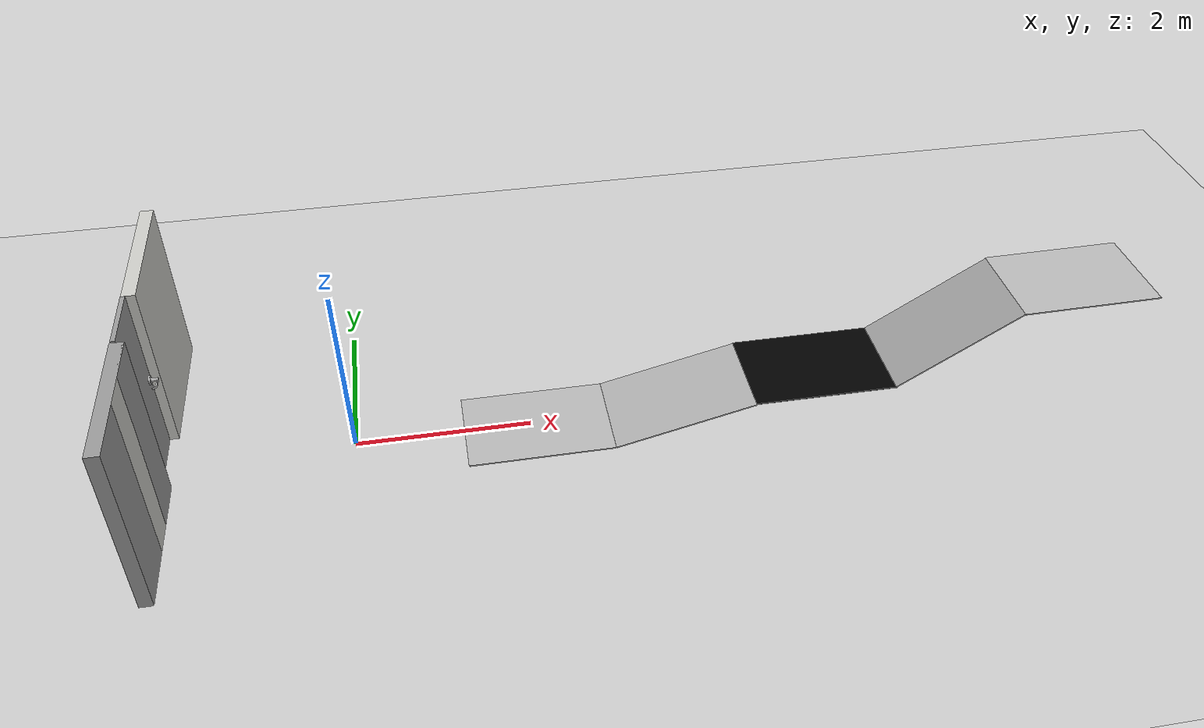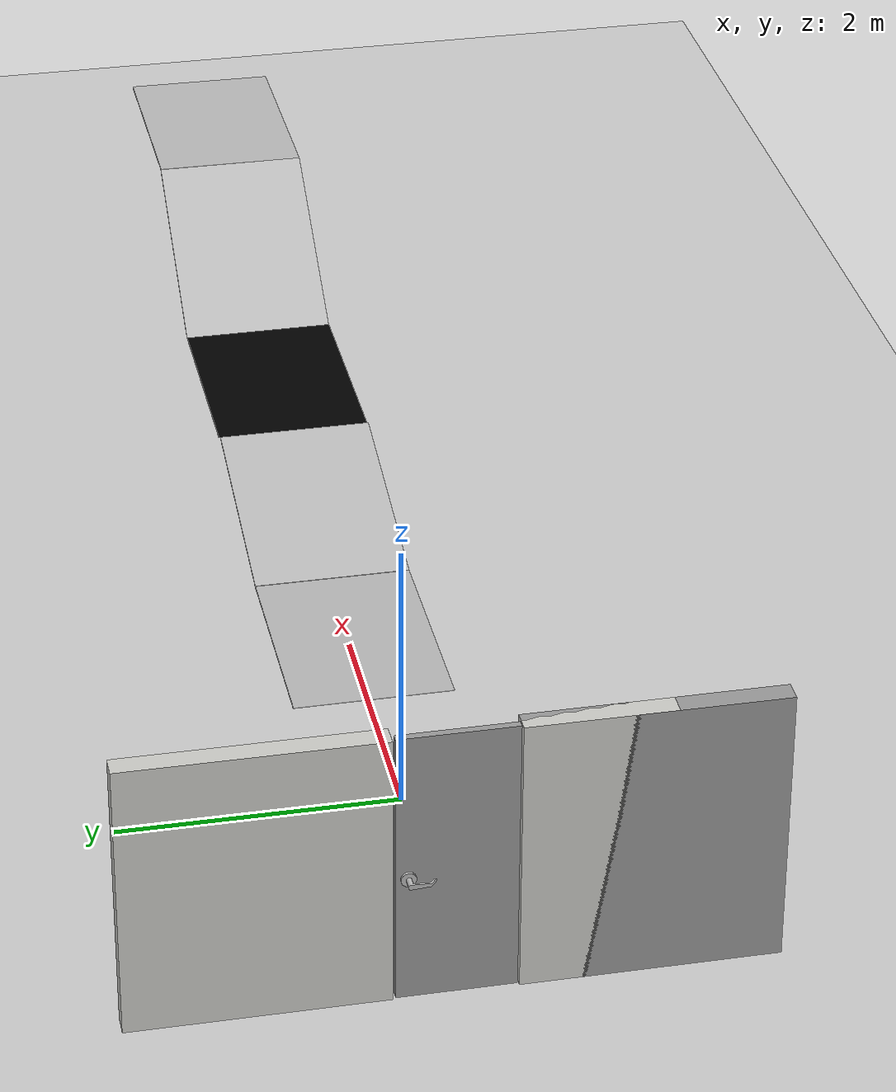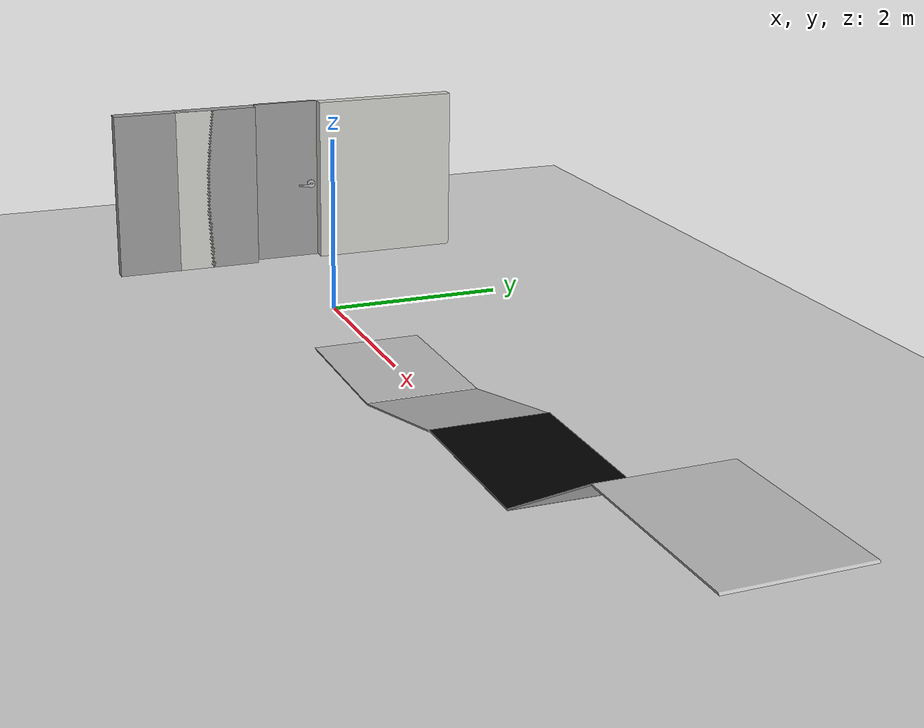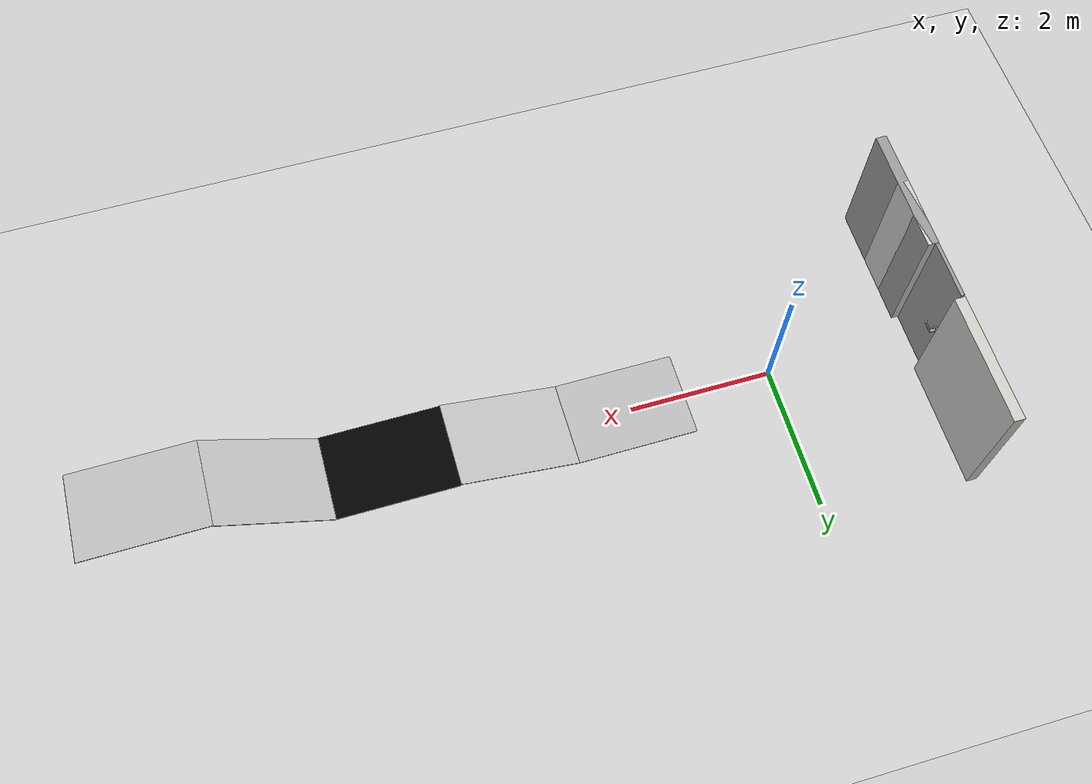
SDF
<sdf version="1.7">
 <world name="default">
  <light name="sun" type="directional">
   <pose>0 0 10 0 -0 0</pose>
   <diffuse>0.8 0.8 0.8 1</diffuse>
   <specular>0.2 0.2 0.2 1</specular>
   <attenuation>
    <range>1000</range>
    <constant>0.9</constant>
    <linear>0.01</linear>
    <quadratic>0.001</quadratic>
   </attenuation>
   <direction>-0.5 0.1 -0.9</direction>
   <spot><inner_angle>0</inner_angle><outer_angle>0</outer_angle><falloff>0</falloff></spot>
  </light>
  <model name="ground_plane">
   <static>1</static>
   <link name="link">
    <collision name="collision">
     <geometry><plane><normal>0 0 1</normal><size>100 100</size></plane></geometry>
     <surface>
      <contact><collide_bitmask>65535</collide_bitmask></contact>
      <friction><ode><mu>100</mu><mu2>50</mu2></ode></friction>
     </surface>
    </collision>
    <visual name="visual">
     <cast_shadows>0</cast_shadows>
     <geometry><plane><normal>0 0 1</normal><size>100 100</size></plane></geometry>
     <material>
      <script><uri>file://media/materials/scripts/gazebo.material</uri><name>Gazebo/Grey</name></script>
     </material>
    </visual>
   </link>
  </model>
  <gravity>0 0 -9.8</gravity>
  <magnetic_field>6e-06 2.3e-05 -4.2e-05</magnetic_field>
  <atmosphere type="adiabatic"/>
  <physics type="ode">
   <max_step_size>0.001</max_step_size>
   <real_time_factor>1</real_time_factor>
   <real_time_update_rate>1000</real_time_update_rate>
  </physics>
  <scene><ambient>0.4 0.4 0.4 1</ambient><background>0.7 0.7 0.7 1</background><shadows>1</shadows></scene>
  <spherical_coordinates>
   <surface_model>EARTH_WGS84</surface_model>
   <latitude_deg>0</latitude_deg>
   <longitude_deg>0</longitude_deg>
   <elevation>0</elevation>
   <heading_deg>0</heading_deg>
  </spherical_coordinates>
  <model name="DoorFrame">
   <link name="Wall_1">
    <pose>-0.003543 -1.28329 0 0 0 -1.5708</pose>
    <inertial>
     <mass>1</mass>
     <inertia><ixx>1</ixx><ixy>0</ixy><ixz>0</ixz><iyy>1</iyy><iyz>0</iyz><izz>1</izz></inertia>
    </inertial>
    <visual name="Wall_1_Visual">
     <pose>0.38 0 1 0 -0 0</pose>
     <geometry><box><size>1.75 0.15 2</size></box></geometry>
     <material>
      <script><uri>file://media/materials/scripts/gazebo.material</uri><name>Gazebo/Grey</name></script>
      <ambient>1 1 1 1</ambient>
      <shader type="pixel"><normal_map>__default__</normal_map></shader>
      <diffuse>0.7 0.7 0.7 1</diffuse>
      <specular>0.01 0.01 0.01 1</specular>
      <emissive>0 0 0 1</emissive>
     </material>
     <meta><layer>0</layer></meta>
    </visual>
    <collision name="Wall_1_Collision">
     <pose>0.38 0 1 0 -0 0</pose>
     <geometry><box><size>1.75 0.15 2</size></box></geometry>
     <surface>
      <friction>
       <ode><mu>1</mu><mu2>1</mu2><fdir1>0 0 0</fdir1><slip1>0</slip1><slip2>0</slip2></ode>
       <torsional>
        <coefficient>1</coefficient>
        <patch_radius>0</patch_radius>
        <surface_radius>0</surface_radius>
        <use_patch_radius>1</use_patch_radius>
        <ode><slip>0</slip></ode>
       </torsional>
      </friction>
      <bounce><restitution_coefficient>0</restitution_coefficient><threshold>1e+06</threshold></bounce>
      <contact>
       <collide_without_contact>0</collide_without_contact>
       <collide_without_contact_bitmask>1</collide_without_contact_bitmask>
       <collide_bitmask>1</collide_bitmask>
       <ode>
        <soft_cfm>0</soft_cfm>
        <soft_erp>0.2</soft_erp>
        <kp>1e+13</kp>
        <kd>1</kd>
        <max_vel>0.01</max_vel>
        <min_depth>0</min_depth>
       </ode>
       <bullet>
        <split_impulse>1</split_impulse>
        <split_impulse_penetration_threshold>-0.01</split_impulse_penetration_threshold>
        <soft_cfm>0</soft_cfm>
        <soft_erp>0.2</soft_erp>
        <kp>1e+13</kp>
        <kd>1</kd>
       </bullet>
      </contact>
     </surface>
    </collision>
   </link>
   <link name="Wall_2">
    <pose>-0.003543 -1.28826 0 0 -0 1.5708</pose>
    <inertial>
     <mass>1</mass>
     <inertia><ixx>1</ixx><ixy>0</ixy><ixz>0</ixz><iyy>1</iyy><iyz>0</iyz><izz>1</izz></inertia>
    </inertial>
    <visual name="Wall_2_Visual">
     <pose>0 0 1 0 -0 0</pose>
     <geometry><box><size>1 0.15 2</size></box></geometry>
     <material>
      <script><uri>file://media/materials/scripts/gazebo.material</uri><name>Gazebo/CeilingTiled</name></script>
      <ambient>1 1 1 1</ambient>
      <shader type="pixel"><normal_map>__default__</normal_map></shader>
      <diffuse>1 1 1 1</diffuse>
      <specular>0 0 0 1</specular>
      <emissive>0 0 0 1</emissive>
     </material>
     <meta><layer>0</layer></meta>
    </visual>
    <collision name="Wall_2_Collision">
     <pose>0 0 1 0 -0 0</pose>
     <geometry><box><size>1 0.15 2</size></box></geometry>
     <surface>
      <friction>
       <ode><mu>1</mu><mu2>1</mu2><fdir1>0 0 0</fdir1><slip1>0</slip1><slip2>0</slip2></ode>
       <torsional>
        <coefficient>1</coefficient>
        <patch_radius>0</patch_radius>
        <surface_radius>0</surface_radius>
        <use_patch_radius>1</use_patch_radius>
        <ode><slip>0</slip></ode>
       </torsional>
      </friction>
      <bounce><restitution_coefficient>0</restitution_coefficient><threshold>1e+06</threshold></bounce>
      <contact>
       <collide_without_contact>0</collide_without_contact>
       <collide_without_contact_bitmask>1</collide_without_contact_bitmask>
       <collide_bitmask>1</collide_bitmask>
       <ode>
        <soft_cfm>0</soft_cfm>
        <soft_erp>0.2</soft_erp>
        <kp>1e+13</kp>
        <kd>1</kd>
        <max_vel>0.01</max_vel>
        <min_depth>0</min_depth>
       </ode>
       <bullet>
        <split_impulse>1</split_impulse>
        <split_impulse_penetration_threshold>-0.01</split_impulse_penetration_threshold>
        <soft_cfm>0</soft_cfm>
        <soft_erp>0.2</soft_erp>
        <kp>1e+13</kp>
        <kd>1</kd>
       </bullet>
      </contact>
     </surface>
    </collision>
   </link>
   <link name="Wall_4">
    <pose>0.003543 0.91326 0 0 0 -1.5708</pose>
    <inertial>
     <mass>1</mass>
     <inertia><ixx>1</ixx><ixy>0</ixy><ixz>0</ixz><iyy>1</iyy><iyz>0</iyz><izz>1</izz></inertia>
    </inertial>
    <visual name="Wall_4_Visual">
     <pose>0 0 1 0 -0 0</pose>
     <geometry><box><size>1.75 0.15 2</size></box></geometry>
     <material>
      <script><uri>file://media/materials/scripts/gazebo.material</uri><name>Gazebo/CeilingTiled</name></script>
      <ambient>1 1 1 1</ambient>
      <shader type="pixel"><normal_map>__default__</normal_map></shader>
      <diffuse>1 1 1 1</diffuse>
      <specular>0 0 0 1</specular>
      <emissive>0 0 0 1</emissive>
     </material>
     <meta><layer>0</layer></meta>
    </visual>
    <collision name="Wall_4_Collision">
     <pose>0 0 1 0 -0 0</pose>
     <geometry><box><size>1.75 0.15 2</size></box></geometry>
     <surface>
      <friction>
       <ode><mu>1</mu><mu2>1</mu2><fdir1>0 0 0</fdir1><slip1>0</slip1><slip2>0</slip2></ode>
       <torsional>
        <coefficient>1</coefficient>
        <patch_radius>0</patch_radius>
        <surface_radius>0</surface_radius>
        <use_patch_radius>1</use_patch_radius>
        <ode><slip>0</slip></ode>
       </torsional>
      </friction>
      <bounce><restitution_coefficient>0</restitution_coefficient><threshold>1e+06</threshold></bounce>
      <contact>
       <collide_without_contact>0</collide_without_contact>
       <collide_without_contact_bitmask>1</collide_without_contact_bitmask>
       <collide_bitmask>1</collide_bitmask>
       <ode>
        <soft_cfm>0</soft_cfm>
        <soft_erp>0.2</soft_erp>
        <kp>1e+13</kp>
        <kd>1</kd>
        <max_vel>0.01</max_vel>
        <min_depth>0</min_depth>
       </ode>
       <bullet>
        <split_impulse>1</split_impulse>
        <split_impulse_penetration_threshold>-0.01</split_impulse_penetration_threshold>
        <soft_cfm>0</soft_cfm>
        <soft_erp>0.2</soft_erp>
        <kp>1e+13</kp>
        <kd>1</kd>
       </bullet>
      </contact>
     </surface>
    </collision>
   </link>
   <static>1</static>
   <pose>-2.07825 0.44069 0 0 -0 0</pose>
  </model>
  <model name="door">
   <link name="door_link">
    <inertial>
     <mass>32</mass>
     <inertia><ixx>12.3733</ixx><ixy>0</ixy><ixz>0</ixz><iyy>10.6733</iyy><iyz>0</iyz><izz>1.71333</izz></inertia>
    </inertial>
    <pose>-0.093879 0.43785 1.06043 0 -0 0</pose>
    <visual name="visual">
     <geometry><box><size>0.05 0.8 2</size></box></geometry>
     <material>
      <script><name>Gazebo/Grey</name><uri>file://media/materials/scripts/gazebo.material</uri></script>
      <shader type="pixel"><normal_map>__default__</normal_map></shader>
      <ambient>0.3 0.3 0.3 1</ambient>
      <diffuse>0.7 0.7 0.7 1</diffuse>
      <specular>0.01 0.01 0.01 1</specular>
      <emissive>0 0 0 1</emissive>
     </material>
     <pose>0 0 -0.05 0 -0 0</pose>
    </visual>
    <collision name="collision">
     <pose>0 0 -0.05 0 -0 0</pose>
     <geometry><box><size>0.05 0.8 2</size></box></geometry>
     <surface>
      <friction>
       <ode><mu>1</mu><mu2>1</mu2><fdir1>0 0 0</fdir1><slip1>0</slip1><slip2>0</slip2></ode>
       <torsional>
        <coefficient>1</coefficient>
        <patch_radius>0</patch_radius>
        <surface_radius>0</surface_radius>
        <use_patch_radius>1</use_patch_radius>
        <ode><slip>0</slip></ode>
       </torsional>
      </friction>
      <bounce><restitution_coefficient>0</restitution_coefficient><threshold>1e+06</threshold></bounce>
      <contact>
       <collide_without_contact>0</collide_without_contact>
       <collide_without_contact_bitmask>1</collide_without_contact_bitmask>
       <collide_bitmask>1</collide_bitmask>
       <ode>
        <soft_cfm>0</soft_cfm>
        <soft_erp>0.2</soft_erp>
        <kp>1e+13</kp>
        <kd>1</kd>
        <max_vel>0.01</max_vel>
        <min_depth>0</min_depth>
       </ode>
       <bullet>
        <split_impulse>1</split_impulse>
        <split_impulse_penetration_threshold>-0.01</split_impulse_penetration_threshold>
        <soft_cfm>0</soft_cfm>
        <soft_erp>0.2</soft_erp>
        <kp>1e+13</kp>
        <kd>1</kd>
       </bullet>
      </contact>
     </surface>
    </collision>
   </link>
   <link name="handle">
    <pose>-0.0688 0.757854 0.946982 -1.57096 0.003264 -1.55282</pose>
    <inertial>
     <inertia><ixx>1</ixx><ixy>0</ixy><ixz>0</ixz><iyy>1</iyy><iyz>0</iyz><izz>1</izz></inertia>
     <mass>1</mass>
    </inertial>
    <visual name="visual">
     <geometry><mesh><uri>model://door_handle/meshes/door_handle.dae</uri></mesh></geometry>
     <material><shader type="pixel"/></material>
    </visual>
    <collision name="collision">
     <geometry>
      <mesh><uri>/home/cp/.gazebo/models/door_handle/meshes/door_handle.dae</uri><scale>1 1 1</scale></mesh>
     </geometry>
     <surface>
      <friction>
       <ode><mu>1</mu><mu2>1</mu2><fdir1>0 0 0</fdir1><slip1>0</slip1><slip2>0</slip2></ode>
       <torsional>
        <coefficient>1</coefficient>
        <patch_radius>0</patch_radius>
        <surface_radius>0</surface_radius>
        <use_patch_radius>1</use_patch_radius>
        <ode><slip>0</slip></ode>
       </torsional>
      </friction>
      <bounce><restitution_coefficient>0</restitution_coefficient><threshold>1e+06</threshold></bounce>
      <contact>
       <collide_without_contact>0</collide_without_contact>
       <collide_without_contact_bitmask>1</collide_without_contact_bitmask>
       <collide_bitmask>1</collide_bitmask>
       <ode>
        <soft_cfm>0</soft_cfm>
        <soft_erp>0.2</soft_erp>
        <kp>1e+13</kp>
        <kd>1</kd>
        <max_vel>0.01</max_vel>
        <min_depth>0</min_depth>
       </ode>
       <bullet>
        <split_impulse>1</split_impulse>
        <split_impulse_penetration_threshold>-0.01</split_impulse_penetration_threshold>
        <soft_cfm>0</soft_cfm>
        <soft_erp>0.2</soft_erp>
        <kp>1e+13</kp>
        <kd>1</kd>
       </bullet>
      </contact>
     </surface>
    </collision>
   </link>
   <link name="handle_clone">
    <pose>-0.121337 0.755654 0.946698 1.5759 0.003192 -1.55219</pose>
    <inertial>
     <inertia><ixx>1</ixx><ixy>0</ixy><ixz>0</ixz><iyy>1</iyy><iyz>0</iyz><izz>1</izz></inertia>
     <mass>1</mass>
    </inertial>
    <visual name="visual">
     <geometry><mesh><uri>model://door_handle/meshes/door_handle.dae</uri></mesh></geometry>
     <material><shader type="pixel"/></material>
    </visual>
    <collision name="collision">
     <geometry>
      <mesh><uri>/home/cp/.gazebo/models/door_handle/meshes/door_handle.dae</uri><scale>1 1 1</scale></mesh>
     </geometry>
     <surface>
      <friction>
       <ode><mu>1</mu><mu2>1</mu2><fdir1>0 0 0</fdir1><slip1>0</slip1><slip2>0</slip2></ode>
       <torsional>
        <coefficient>1</coefficient>
        <patch_radius>0</patch_radius>
        <surface_radius>0</surface_radius>
        <use_patch_radius>1</use_patch_radius>
        <ode><slip>0</slip></ode>
       </torsional>
      </friction>
      <bounce><restitution_coefficient>0</restitution_coefficient><threshold>1e+06</threshold></bounce>
      <contact>
       <collide_without_contact>0</collide_without_contact>
       <collide_without_contact_bitmask>1</collide_without_contact_bitmask>
       <collide_bitmask>1</collide_bitmask>
       <ode>
        <soft_cfm>0</soft_cfm>
        <soft_erp>0.2</soft_erp>
        <kp>1e+13</kp>
        <kd>1</kd>
        <max_vel>0.01</max_vel>
        <min_depth>0</min_depth>
       </ode>
       <bullet>
        <split_impulse>1</split_impulse>
        <split_impulse_penetration_threshold>-0.01</split_impulse_penetration_threshold>
        <soft_cfm>0</soft_cfm>
        <soft_erp>0.2</soft_erp>
        <kp>1e+13</kp>
        <kd>1</kd>
       </bullet>
      </contact>
     </surface>
    </collision>
   </link>
   <joint name="door_handle" type="revolute">
    <parent>door_link</parent>
    <child>handle</child>
    <axis>
     <xyz>0 0 1</xyz>
     <limit><lower>-2</lower><upper>2</upper><effort>6</effort><velocity>10</velocity></limit>
     <dynamics>
      <spring_reference>0</spring_reference>
      <spring_stiffness>0</spring_stiffness>
      <damping>0.05</damping>
      <friction>0</friction>
     </dynamics>
    </axis>
    <physics>
     <ode><limit><cfm>0</cfm><erp>0.2</erp></limit><suspension><cfm>0</cfm><erp>0.2</erp></suspension></ode>
    </physics>
   </joint>
   <joint name="back_door_handle" type="revolute">
    <parent>door_link</parent>
    <child>handle_clone</child>
    <axis>
     <xyz>0 0 1</xyz>
     <limit><lower>-2</lower><upper>2</upper><effort>6</effort><velocity>10</velocity></limit>
     <dynamics>
      <spring_reference>0</spring_reference>
      <spring_stiffness>0</spring_stiffness>
      <damping>0.05</damping>
      <friction>0</friction>
     </dynamics>
    </axis>
    <physics>
     <ode><limit><cfm>0</cfm><erp>0.2</erp></limit><suspension><cfm>0</cfm><erp>0.2</erp></suspension></ode>
    </physics>
   </joint>
   <static>0</static>
   <joint name="world_root" type="revolute">
    <parent>world</parent>
    <child>door_link</child>
    <axis>
     <xyz>0 0 1</xyz>
     <limit><effort>6</effort><velocity>10</velocity><lower>-2</lower><upper>2</upper></limit>
     <dynamics>
      <damping>0.05</damping>
      <spring_reference>0</spring_reference>
      <spring_stiffness>0</spring_stiffness>
     </dynamics>
    </axis>
    <pose>0 -0.4 0 0 -0 0</pose>
   </joint>
   <pose>-2.02936 -0.375067 0 0 -0 0</pose>
  </model>
  <model name="nist_simple_ramp_LONGER">
   <link name="nist_simple_ramp_120_link">
    <visual name="visual">
     <geometry>
      <mesh><uri>model://nist_simple_ramp_120/meshes/nist_simple_ramp_120.dae</uri><scale>1 1 1</scale></mesh>
     </geometry>
     <material><shader type="pixel"/></material>
    </visual>
    <collision name="collision">
     <geometry>
      <mesh>
       <uri>/home/cp/.gazebo/models/nist_simple_ramp_120/meshes/nist_simple_ramp_120.dae</uri>
       <scale>1 1 1</scale>
      </mesh>
     </geometry>
     <surface>
      <friction>
       <ode><mu>1</mu><mu2>1</mu2><fdir1>0 0 0</fdir1><slip1>0</slip1><slip2>0</slip2></ode>
       <torsional>
        <coefficient>1</coefficient>
        <patch_radius>0</patch_radius>
        <surface_radius>0</surface_radius>
        <use_patch_radius>1</use_patch_radius>
        <ode><slip>0</slip></ode>
       </torsional>
      </friction>
      <bounce><restitution_coefficient>0</restitution_coefficient><threshold>1e+06</threshold></bounce>
      <contact>
       <collide_without_contact>0</collide_without_contact>
       <collide_without_contact_bitmask>1</collide_without_contact_bitmask>
       <collide_bitmask>1</collide_bitmask>
       <ode>
        <soft_cfm>0</soft_cfm>
        <soft_erp>0.2</soft_erp>
        <kp>1e+13</kp>
        <kd>1</kd>
        <max_vel>0.01</max_vel>
        <min_depth>0</min_depth>
       </ode>
       <bullet>
        <split_impulse>1</split_impulse>
        <split_impulse_penetration_threshold>-0.01</split_impulse_penetration_threshold>
        <soft_cfm>0</soft_cfm>
        <soft_erp>0.2</soft_erp>
        <kp>1e+13</kp>
        <kd>1</kd>
       </bullet>
      </contact>
     </surface>
    </collision>
   </link>
   <link name="nist_simple_ramp_120_link_clone">
    <pose>-0.000385 -1.44094 -1.0206 -0.228258 0 0</pose>
    <visual name="visual">
     <geometry>
      <mesh><uri>model://nist_simple_ramp_120/meshes/nist_simple_ramp_120.dae</uri><scale>1 1 1</scale></mesh>
     </geometry>
     <material><shader type="pixel"/></material>
    </visual>
    <collision name="collision">
     <geometry>
      <mesh>
       <uri>/home/cp/.gazebo/models/nist_simple_ramp_120/meshes/nist_simple_ramp_120.dae</uri>
       <scale>1 1 1</scale>
      </mesh>
     </geometry>
     <surface>
      <friction>
       <ode><mu>1</mu><mu2>1</mu2><fdir1>0 0 0</fdir1><slip1>0</slip1><slip2>0</slip2></ode>
       <torsional>
        <coefficient>1</coefficient>
        <patch_radius>0</patch_radius>
        <surface_radius>0</surface_radius>
        <use_patch_radius>1</use_patch_radius>
        <ode><slip>0</slip></ode>
       </torsional>
      </friction>
      <bounce><restitution_coefficient>0</restitution_coefficient><threshold>1e+06</threshold></bounce>
      <contact>
       <collide_without_contact>0</collide_without_contact>
       <collide_without_contact_bitmask>1</collide_without_contact_bitmask>
       <collide_bitmask>1</collide_bitmask>
       <ode>
        <soft_cfm>0</soft_cfm>
        <soft_erp>0.2</soft_erp>
        <kp>1e+13</kp>
        <kd>1</kd>
        <max_vel>0.01</max_vel>
        <min_depth>0</min_depth>
       </ode>
       <bullet>
        <split_impulse>1</split_impulse>
        <split_impulse_penetration_threshold>-0.01</split_impulse_penetration_threshold>
        <soft_cfm>0</soft_cfm>
        <soft_erp>0.2</soft_erp>
        <kp>1e+13</kp>
        <kd>1</kd>
       </bullet>
      </contact>
     </surface>
    </collision>
   </link>
   <link name="nist_simple_ramp_120_link_clone_0">
    <pose>0.011456 -2.60372 -2.06883 0.001607 -0 0</pose>
    <inertial>
     <mass>1</mass>
     <inertia><ixx>1</ixx><ixy>0</ixy><ixz>0</ixz><iyy>1</iyy><iyz>0</iyz><izz>1</izz></inertia>
    </inertial>
    <visual name="visual">
     <geometry>
      <mesh><uri>model://nist_simple_ramp_120/meshes/nist_simple_ramp_120.dae</uri><scale>1 1 1</scale></mesh>
     </geometry>
     <material>
      <shader type="pixel"><normal_map>__default__</normal_map></shader>
      <script>
       <name>ModelPreview_16::nist_simple_ramp_120_link_clone_0::visual_MATERIAL_</name>
       <uri>__default__</uri>
      </script>
      <ambient>0 0 0 1</ambient>
      <diffuse>0 0 0 1</diffuse>
      <specular>0 0 0 1</specular>
      <emissive>0 0 0 1</emissive>
     </material>
    </visual>
    <collision name="collision">
     <geometry>
      <mesh>
       <uri>/home/cp/.gazebo/models/nist_simple_ramp_120/meshes/nist_simple_ramp_120.dae</uri>
       <scale>1 1 1</scale>
      </mesh>
     </geometry>
     <surface>
      <friction>
       <ode><mu>1</mu><mu2>1</mu2><fdir1>0 0 0</fdir1><slip1>0</slip1><slip2>0</slip2></ode>
       <torsional>
        <coefficient>1</coefficient>
        <patch_radius>0</patch_radius>
        <surface_radius>0</surface_radius>
        <use_patch_radius>1</use_patch_radius>
        <ode><slip>0</slip></ode>
       </torsional>
      </friction>
      <bounce><restitution_coefficient>0</restitution_coefficient><threshold>1e+06</threshold></bounce>
      <contact>
       <collide_without_contact>0</collide_without_contact>
       <collide_without_contact_bitmask>1</collide_without_contact_bitmask>
       <collide_bitmask>1</collide_bitmask>
       <ode>
        <soft_cfm>0</soft_cfm>
        <soft_erp>0.2</soft_erp>
        <kp>1e+13</kp>
        <kd>1</kd>
        <max_vel>0.01</max_vel>
        <min_depth>0</min_depth>
       </ode>
       <bullet>
        <split_impulse>1</split_impulse>
        <split_impulse_penetration_threshold>-0.01</split_impulse_penetration_threshold>
        <soft_cfm>0</soft_cfm>
        <soft_erp>0.2</soft_erp>
        <kp>1e+13</kp>
        <kd>1</kd>
       </bullet>
      </contact>
     </surface>
    </collision>
   </link>
   <link name="nist_simple_ramp_120_link_clone_clone">
    <pose>0.010578 -3.6932 -1.74793 2.60143 0.005645 -0.008425</pose>
    <visual name="visual">
     <geometry>
      <mesh><uri>model://nist_simple_ramp_120/meshes/nist_simple_ramp_120.dae</uri><scale>1 1 1</scale></mesh>
     </geometry>
     <material><shader type="pixel"/></material>
    </visual>
    <collision name="collision">
     <geometry>
      <mesh>
       <uri>/home/cp/.gazebo/models/nist_simple_ramp_120/meshes/nist_simple_ramp_120.dae</uri>
       <scale>1 1 1</scale>
      </mesh>
     </geometry>
     <surface>
      <friction>
       <ode><mu>1</mu><mu2>1</mu2><fdir1>0 0 0</fdir1><slip1>0</slip1><slip2>0</slip2></ode>
       <torsional>
        <coefficient>1</coefficient>
        <patch_radius>0</patch_radius>
        <surface_radius>0</surface_radius>
        <use_patch_radius>1</use_patch_radius>
        <ode><slip>0</slip></ode>
       </torsional>
      </friction>
      <bounce><restitution_coefficient>0</restitution_coefficient><threshold>1e+06</threshold></bounce>
      <contact>
       <collide_without_contact>0</collide_without_contact>
       <collide_without_contact_bitmask>1</collide_without_contact_bitmask>
       <collide_bitmask>1</collide_bitmask>
       <ode>
        <soft_cfm>0</soft_cfm>
        <soft_erp>0.2</soft_erp>
        <kp>1e+13</kp>
        <kd>1</kd>
        <max_vel>0.01</max_vel>
        <min_depth>0</min_depth>
       </ode>
       <bullet>
        <split_impulse>1</split_impulse>
        <split_impulse_penetration_threshold>-0.01</split_impulse_penetration_threshold>
        <soft_cfm>0</soft_cfm>
        <soft_erp>0.2</soft_erp>
        <kp>1e+13</kp>
        <kd>1</kd>
       </bullet>
      </contact>
     </surface>
    </collision>
   </link>
   <link name="nist_simple_ramp_120_link_clone_clone_0">
    <pose>0.007693 -5.39971 -3.6461 -0.005486 -0.009868 -0.001455</pose>
    <visual name="visual">
     <geometry>
      <mesh><uri>model://nist_simple_ramp_120/meshes/nist_simple_ramp_120.dae</uri><scale>1 1 1</scale></mesh>
     </geometry>
     <material><shader type="pixel"/></material>
    </visual>
    <collision name="collision">
     <geometry>
      <mesh>
       <uri>/home/cp/.gazebo/models/nist_simple_ramp_120/meshes/nist_simple_ramp_120.dae</uri>
       <scale>1 1 1</scale>
      </mesh>
     </geometry>
     <surface>
      <friction>
       <ode><mu>1</mu><mu2>1</mu2><fdir1>0 0 0</fdir1><slip1>0</slip1><slip2>0</slip2></ode>
       <torsional>
        <coefficient>1</coefficient>
        <patch_radius>0</patch_radius>
        <surface_radius>0</surface_radius>
        <use_patch_radius>1</use_patch_radius>
        <ode><slip>0</slip></ode>
       </torsional>
      </friction>
      <bounce><restitution_coefficient>0</restitution_coefficient><threshold>1e+06</threshold></bounce>
      <contact>
       <collide_without_contact>0</collide_without_contact>
       <collide_without_contact_bitmask>1</collide_without_contact_bitmask>
       <collide_bitmask>1</collide_bitmask>
       <ode>
        <soft_cfm>0</soft_cfm>
        <soft_erp>0.2</soft_erp>
        <kp>1e+13</kp>
        <kd>1</kd>
        <max_vel>0.01</max_vel>
        <min_depth>0</min_depth>
       </ode>
       <bullet>
        <split_impulse>1</split_impulse>
        <split_impulse_penetration_threshold>-0.01</split_impulse_penetration_threshold>
        <soft_cfm>0</soft_cfm>
        <soft_erp>0.2</soft_erp>
        <kp>1e+13</kp>
        <kd>1</kd>
       </bullet>
      </contact>
     </surface>
    </collision>
   </link>
   <static>1</static>
   <pose>2.50039 -0.035999 -0.414294 -0.783555 0 1.57392</pose>
  </model>
 </world>
</sdf>
